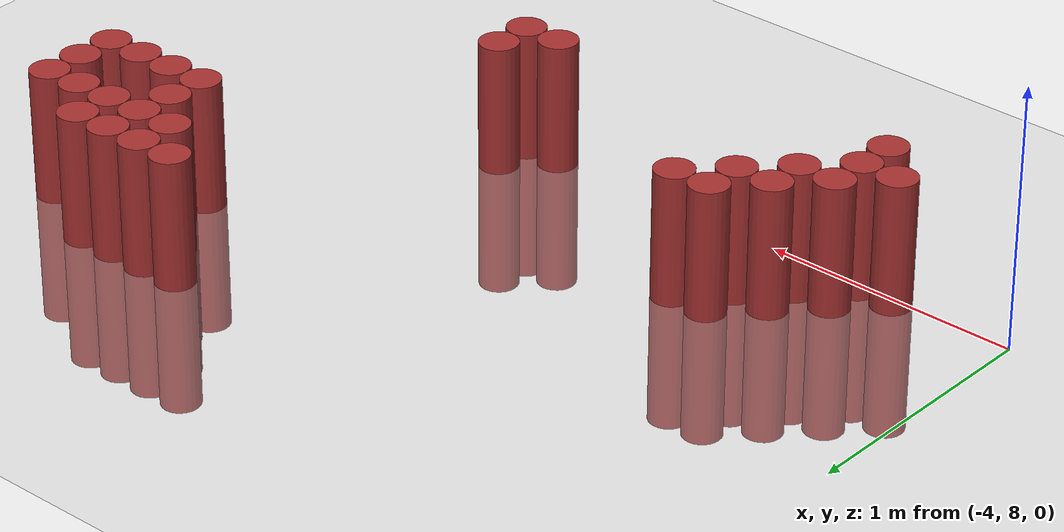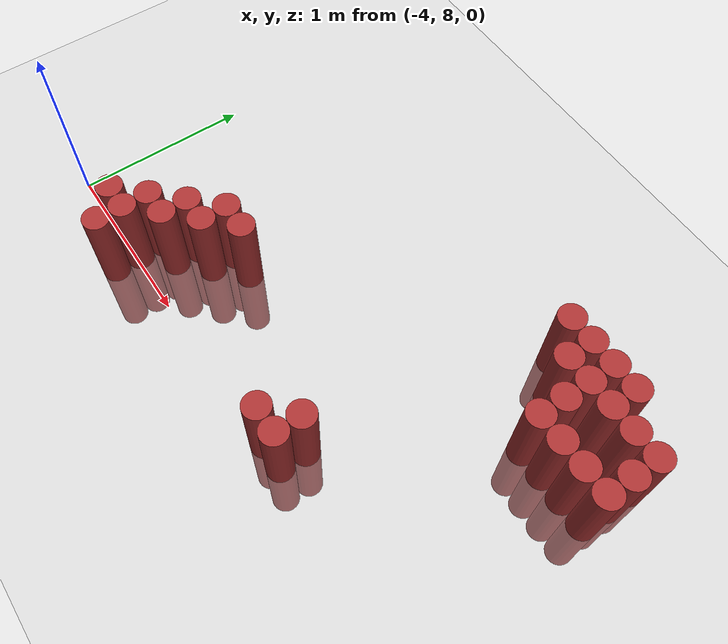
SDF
<sdf version="1.6">
 <world name="default">
  <model name="ground_plane">
   <static>1</static>
   <link name="link">
    <collision name="collision">
     <geometry><plane><normal>0 0 1</normal><size>100 100</size></plane></geometry>
     <surface><friction><ode><mu>100</mu><mu2>50</mu2></ode></friction></surface>
    </collision>
    <visual name="visual">
     <cast_shadows>0</cast_shadows>
     <geometry><plane><normal>0 0 1</normal><size>100 100</size></plane></geometry>
     <material>
      <script><uri>file://media/materials/scripts/gazebo.material</uri><name>Gazebo/Grey</name></script>
     </material>
    </visual>
   </link>
  </model>
  <model name="unit_cylinder_154">
   <static>1</static>
   <pose>-3.525000 8.025000 0.000000 0.000000 0.000000 0.000000</pose>
   <link name="link">
    <inertial>
     <mass>1</mass>
     <inertia><ixx>0.145833</ixx><ixy>0</ixy><ixz>0</ixz><iyy>0.145833</iyy><iyz>0</iyz><izz>0.125</izz></inertia>
    </inertial>
    <collision name="collision">
     <geometry><cylinder><radius>0.075000</radius><length>1</length></cylinder></geometry>
    </collision>
    <visual name="visual">
     <geometry><cylinder><radius>0.075000</radius><length>1</length></cylinder></geometry>
     <material>
      <ambient>0.648000 0.192000 0.192000 1</ambient>
      <diffuse>0.648000 0.192000 0.192000 1</diffuse>
     </material>
     <material>
      <script><name>Gazebo/Grey</name><uri>file://media/materials/scripts/gazebo.material</uri></script>
     </material>
    </visual>
   </link>
  </model>
  <model name="unit_cylinder_156">
   <static>1</static>
   <pose>-3.375000 7.875000 0.000000 0.000000 0.000000 0.000000</pose>
   <link name="link">
    <inertial>
     <mass>1</mass>
     <inertia><ixx>0.145833</ixx><ixy>0</ixy><ixz>0</ixz><iyy>0.145833</iyy><iyz>0</iyz><izz>0.125</izz></inertia>
    </inertial>
    <collision name="collision">
     <geometry><cylinder><radius>0.075000</radius><length>1</length></cylinder></geometry>
    </collision>
    <visual name="visual">
     <geometry><cylinder><radius>0.075000</radius><length>1</length></cylinder></geometry>
     <material>
      <ambient>0.648000 0.192000 0.192000 1</ambient>
      <diffuse>0.648000 0.192000 0.192000 1</diffuse>
     </material>
     <material>
      <script><name>Gazebo/Grey</name><uri>file://media/materials/scripts/gazebo.material</uri></script>
     </material>
    </visual>
   </link>
  </model>
  <model name="unit_cylinder_157">
   <static>1</static>
   <pose>-3.375000 8.025000 0.000000 0.000000 0.000000 0.000000</pose>
   <link name="link">
    <inertial>
     <mass>1</mass>
     <inertia><ixx>0.145833</ixx><ixy>0</ixy><ixz>0</ixz><iyy>0.145833</iyy><iyz>0</iyz><izz>0.125</izz></inertia>
    </inertial>
    <collision name="collision">
     <geometry><cylinder><radius>0.075000</radius><length>1</length></cylinder></geometry>
    </collision>
    <visual name="visual">
     <geometry><cylinder><radius>0.075000</radius><length>1</length></cylinder></geometry>
     <material>
      <ambient>0.648000 0.192000 0.192000 1</ambient>
      <diffuse>0.648000 0.192000 0.192000 1</diffuse>
     </material>
     <material>
      <script><name>Gazebo/Grey</name><uri>file://media/materials/scripts/gazebo.material</uri></script>
     </material>
    </visual>
   </link>
  </model>
  <model name="unit_cylinder_158">
   <static>1</static>
   <pose>-3.375000 8.175000 0.000000 0.000000 0.000000 0.000000</pose>
   <link name="link">
    <inertial>
     <mass>1</mass>
     <inertia><ixx>0.145833</ixx><ixy>0</ixy><ixz>0</ixz><iyy>0.145833</iyy><iyz>0</iyz><izz>0.125</izz></inertia>
    </inertial>
    <collision name="collision">
     <geometry><cylinder><radius>0.075000</radius><length>1</length></cylinder></geometry>
    </collision>
    <visual name="visual">
     <geometry><cylinder><radius>0.075000</radius><length>1</length></cylinder></geometry>
     <material>
      <ambient>0.648000 0.192000 0.192000 1</ambient>
      <diffuse>0.648000 0.192000 0.192000 1</diffuse>
     </material>
     <material>
      <script><name>Gazebo/Grey</name><uri>file://media/materials/scripts/gazebo.material</uri></script>
     </material>
    </visual>
   </link>
  </model>
  <model name="unit_cylinder_162">
   <static>1</static>
   <pose>-3.225000 8.175000 0.000000 0.000000 0.000000 0.000000</pose>
   <link name="link">
    <inertial>
     <mass>1</mass>
     <inertia><ixx>0.145833</ixx><ixy>0</ixy><ixz>0</ixz><iyy>0.145833</iyy><iyz>0</iyz><izz>0.125</izz></inertia>
    </inertial>
    <collision name="collision">
     <geometry><cylinder><radius>0.075000</radius><length>1</length></cylinder></geometry>
    </collision>
    <visual name="visual">
     <geometry><cylinder><radius>0.075000</radius><length>1</length></cylinder></geometry>
     <material>
      <ambient>0.648000 0.192000 0.192000 1</ambient>
      <diffuse>0.648000 0.192000 0.192000 1</diffuse>
     </material>
     <material>
      <script><name>Gazebo/Grey</name><uri>file://media/materials/scripts/gazebo.material</uri></script>
     </material>
    </visual>
   </link>
  </model>
  <model name="unit_cylinder_163">
   <static>1</static>
   <pose>-3.225000 8.325000 0.000000 0.000000 0.000000 0.000000</pose>
   <link name="link">
    <inertial>
     <mass>1</mass>
     <inertia><ixx>0.145833</ixx><ixy>0</ixy><ixz>0</ixz><iyy>0.145833</iyy><iyz>0</iyz><izz>0.125</izz></inertia>
    </inertial>
    <collision name="collision">
     <geometry><cylinder><radius>0.075000</radius><length>1</length></cylinder></geometry>
    </collision>
    <visual name="visual">
     <geometry><cylinder><radius>0.075000</radius><length>1</length></cylinder></geometry>
     <material>
      <ambient>0.648000 0.192000 0.192000 1</ambient>
      <diffuse>0.648000 0.192000 0.192000 1</diffuse>
     </material>
     <material>
      <script><name>Gazebo/Grey</name><uri>file://media/materials/scripts/gazebo.material</uri></script>
     </material>
    </visual>
   </link>
  </model>
  <model name="unit_cylinder_164">
   <static>1</static>
   <pose>-3.075000 8.325000 0.000000 0.000000 0.000000 0.000000</pose>
   <link name="link">
    <inertial>
     <mass>1</mass>
     <inertia><ixx>0.145833</ixx><ixy>0</ixy><ixz>0</ixz><iyy>0.145833</iyy><iyz>0</iyz><izz>0.125</izz></inertia>
    </inertial>
    <collision name="collision">
     <geometry><cylinder><radius>0.075000</radius><length>1</length></cylinder></geometry>
    </collision>
    <visual name="visual">
     <geometry><cylinder><radius>0.075000</radius><length>1</length></cylinder></geometry>
     <material>
      <ambient>0.648000 0.192000 0.192000 1</ambient>
      <diffuse>0.648000 0.192000 0.192000 1</diffuse>
     </material>
     <material>
      <script><name>Gazebo/Grey</name><uri>file://media/materials/scripts/gazebo.material</uri></script>
     </material>
    </visual>
   </link>
  </model>
  <model name="unit_cylinder_165">
   <static>1</static>
   <pose>-3.075000 8.475000 0.000000 0.000000 0.000000 0.000000</pose>
   <link name="link">
    <inertial>
     <mass>1</mass>
     <inertia><ixx>0.145833</ixx><ixy>0</ixy><ixz>0</ixz><iyy>0.145833</iyy><iyz>0</iyz><izz>0.125</izz></inertia>
    </inertial>
    <collision name="collision">
     <geometry><cylinder><radius>0.075000</radius><length>1</length></cylinder></geometry>
    </collision>
    <visual name="visual">
     <geometry><cylinder><radius>0.075000</radius><length>1</length></cylinder></geometry>
     <material>
      <ambient>0.648000 0.192000 0.192000 1</ambient>
      <diffuse>0.648000 0.192000 0.192000 1</diffuse>
     </material>
     <material>
      <script><name>Gazebo/Grey</name><uri>file://media/materials/scripts/gazebo.material</uri></script>
     </material>
    </visual>
   </link>
  </model>
  <model name="unit_cylinder_166">
   <static>1</static>
   <pose>-2.925000 8.475000 0.000000 0.000000 0.000000 0.000000</pose>
   <link name="link">
    <inertial>
     <mass>1</mass>
     <inertia><ixx>0.145833</ixx><ixy>0</ixy><ixz>0</ixz><iyy>0.145833</iyy><iyz>0</iyz><izz>0.125</izz></inertia>
    </inertial>
    <collision name="collision">
     <geometry><cylinder><radius>0.075000</radius><length>1</length></cylinder></geometry>
    </collision>
    <visual name="visual">
     <geometry><cylinder><radius>0.075000</radius><length>1</length></cylinder></geometry>
     <material>
      <ambient>0.648000 0.192000 0.192000 1</ambient>
      <diffuse>0.648000 0.192000 0.192000 1</diffuse>
     </material>
     <material>
      <script><name>Gazebo/Grey</name><uri>file://media/materials/scripts/gazebo.material</uri></script>
     </material>
    </visual>
   </link>
  </model>
  <model name="unit_cylinder_179">
   <static>1</static>
   <pose>-2.025000 8.025000 0.000000 0.000000 0.000000 0.000000</pose>
   <link name="link">
    <inertial>
     <mass>1</mass>
     <inertia><ixx>0.145833</ixx><ixy>0</ixy><ixz>0</ixz><iyy>0.145833</iyy><iyz>0</iyz><izz>0.125</izz></inertia>
    </inertial>
    <collision name="collision">
     <geometry><cylinder><radius>0.075000</radius><length>1</length></cylinder></geometry>
    </collision>
    <visual name="visual">
     <geometry><cylinder><radius>0.075000</radius><length>1</length></cylinder></geometry>
     <material>
      <ambient>0.648000 0.192000 0.192000 1</ambient>
      <diffuse>0.648000 0.192000 0.192000 1</diffuse>
     </material>
     <material>
      <script><name>Gazebo/Grey</name><uri>file://media/materials/scripts/gazebo.material</uri></script>
     </material>
    </visual>
   </link>
  </model>
  <model name="unit_cylinder_188">
   <static>1</static>
   <pose>-1.875000 8.025000 0.000000 0.000000 0.000000 0.000000</pose>
   <link name="link">
    <inertial>
     <mass>1</mass>
     <inertia><ixx>0.145833</ixx><ixy>0</ixy><ixz>0</ixz><iyy>0.145833</iyy><iyz>0</iyz><izz>0.125</izz></inertia>
    </inertial>
    <collision name="collision">
     <geometry><cylinder><radius>0.075000</radius><length>1</length></cylinder></geometry>
    </collision>
    <visual name="visual">
     <geometry><cylinder><radius>0.075000</radius><length>1</length></cylinder></geometry>
     <material>
      <ambient>0.648000 0.192000 0.192000 1</ambient>
      <diffuse>0.648000 0.192000 0.192000 1</diffuse>
     </material>
     <material>
      <script><name>Gazebo/Grey</name><uri>file://media/materials/scripts/gazebo.material</uri></script>
     </material>
    </visual>
   </link>
  </model>
  <model name="unit_cylinder_189">
   <static>1</static>
   <pose>-1.875000 8.175000 0.000000 0.000000 0.000000 0.000000</pose>
   <link name="link">
    <inertial>
     <mass>1</mass>
     <inertia><ixx>0.145833</ixx><ixy>0</ixy><ixz>0</ixz><iyy>0.145833</iyy><iyz>0</iyz><izz>0.125</izz></inertia>
    </inertial>
    <collision name="collision">
     <geometry><cylinder><radius>0.075000</radius><length>1</length></cylinder></geometry>
    </collision>
    <visual name="visual">
     <geometry><cylinder><radius>0.075000</radius><length>1</length></cylinder></geometry>
     <material>
      <ambient>0.648000 0.192000 0.192000 1</ambient>
      <diffuse>0.648000 0.192000 0.192000 1</diffuse>
     </material>
     <material>
      <script><name>Gazebo/Grey</name><uri>file://media/materials/scripts/gazebo.material</uri></script>
     </material>
    </visual>
   </link>
  </model>
  <model name="unit_cylinder_200">
   <static>1</static>
   <pose>-1.575000 9.525000 0.000000 0.000000 0.000000 0.000000</pose>
   <link name="link">
    <inertial>
     <mass>1</mass>
     <inertia><ixx>0.145833</ixx><ixy>0</ixy><ixz>0</ixz><iyy>0.145833</iyy><iyz>0</iyz><izz>0.125</izz></inertia>
    </inertial>
    <collision name="collision">
     <geometry><cylinder><radius>0.075000</radius><length>1</length></cylinder></geometry>
    </collision>
    <visual name="visual">
     <geometry><cylinder><radius>0.075000</radius><length>1</length></cylinder></geometry>
     <material>
      <ambient>0.648000 0.192000 0.192000 1</ambient>
      <diffuse>0.648000 0.192000 0.192000 1</diffuse>
     </material>
     <material>
      <script><name>Gazebo/Grey</name><uri>file://media/materials/scripts/gazebo.material</uri></script>
     </material>
    </visual>
   </link>
  </model>
  <model name="unit_cylinder_201">
   <static>1</static>
   <pose>-1.425000 9.375000 0.000000 0.000000 0.000000 0.000000</pose>
   <link name="link">
    <inertial>
     <mass>1</mass>
     <inertia><ixx>0.145833</ixx><ixy>0</ixy><ixz>0</ixz><iyy>0.145833</iyy><iyz>0</iyz><izz>0.125</izz></inertia>
    </inertial>
    <collision name="collision">
     <geometry><cylinder><radius>0.075000</radius><length>1</length></cylinder></geometry>
    </collision>
    <visual name="visual">
     <geometry><cylinder><radius>0.075000</radius><length>1</length></cylinder></geometry>
     <material>
      <ambient>0.648000 0.192000 0.192000 1</ambient>
      <diffuse>0.648000 0.192000 0.192000 1</diffuse>
     </material>
     <material>
      <script><name>Gazebo/Grey</name><uri>file://media/materials/scripts/gazebo.material</uri></script>
     </material>
    </visual>
   </link>
  </model>
  <model name="unit_cylinder_202">
   <static>1</static>
   <pose>-1.425000 9.525000 0.000000 0.000000 0.000000 0.000000</pose>
   <link name="link">
    <inertial>
     <mass>1</mass>
     <inertia><ixx>0.145833</ixx><ixy>0</ixy><ixz>0</ixz><iyy>0.145833</iyy><iyz>0</iyz><izz>0.125</izz></inertia>
    </inertial>
    <collision name="collision">
     <geometry><cylinder><radius>0.075000</radius><length>1</length></cylinder></geometry>
    </collision>
    <visual name="visual">
     <geometry><cylinder><radius>0.075000</radius><length>1</length></cylinder></geometry>
     <material>
      <ambient>0.648000 0.192000 0.192000 1</ambient>
      <diffuse>0.648000 0.192000 0.192000 1</diffuse>
     </material>
     <material>
      <script><name>Gazebo/Grey</name><uri>file://media/materials/scripts/gazebo.material</uri></script>
     </material>
    </visual>
   </link>
  </model>
  <model name="unit_cylinder_203">
   <static>1</static>
   <pose>-1.275000 9.075000 0.000000 0.000000 0.000000 0.000000</pose>
   <link name="link">
    <inertial>
     <mass>1</mass>
     <inertia><ixx>0.145833</ixx><ixy>0</ixy><ixz>0</ixz><iyy>0.145833</iyy><iyz>0</iyz><izz>0.125</izz></inertia>
    </inertial>
    <collision name="collision">
     <geometry><cylinder><radius>0.075000</radius><length>1</length></cylinder></geometry>
    </collision>
    <visual name="visual">
     <geometry><cylinder><radius>0.075000</radius><length>1</length></cylinder></geometry>
     <material>
      <ambient>0.648000 0.192000 0.192000 1</ambient>
      <diffuse>0.648000 0.192000 0.192000 1</diffuse>
     </material>
     <material>
      <script><name>Gazebo/Grey</name><uri>file://media/materials/scripts/gazebo.material</uri></script>
     </material>
    </visual>
   </link>
  </model>
  <model name="unit_cylinder_204">
   <static>1</static>
   <pose>-1.275000 9.225000 0.000000 0.000000 0.000000 0.000000</pose>
   <link name="link">
    <inertial>
     <mass>1</mass>
     <inertia><ixx>0.145833</ixx><ixy>0</ixy><ixz>0</ixz><iyy>0.145833</iyy><iyz>0</iyz><izz>0.125</izz></inertia>
    </inertial>
    <collision name="collision">
     <geometry><cylinder><radius>0.075000</radius><length>1</length></cylinder></geometry>
    </collision>
    <visual name="visual">
     <geometry><cylinder><radius>0.075000</radius><length>1</length></cylinder></geometry>
     <material>
      <ambient>0.648000 0.192000 0.192000 1</ambient>
      <diffuse>0.648000 0.192000 0.192000 1</diffuse>
     </material>
     <material>
      <script><name>Gazebo/Grey</name><uri>file://media/materials/scripts/gazebo.material</uri></script>
     </material>
    </visual>
   </link>
  </model>
  <model name="unit_cylinder_205">
   <static>1</static>
   <pose>-1.275000 9.375000 0.000000 0.000000 0.000000 0.000000</pose>
   <link name="link">
    <inertial>
     <mass>1</mass>
     <inertia><ixx>0.145833</ixx><ixy>0</ixy><ixz>0</ixz><iyy>0.145833</iyy><iyz>0</iyz><izz>0.125</izz></inertia>
    </inertial>
    <collision name="collision">
     <geometry><cylinder><radius>0.075000</radius><length>1</length></cylinder></geometry>
    </collision>
    <visual name="visual">
     <geometry><cylinder><radius>0.075000</radius><length>1</length></cylinder></geometry>
     <material>
      <ambient>0.648000 0.192000 0.192000 1</ambient>
      <diffuse>0.648000 0.192000 0.192000 1</diffuse>
     </material>
     <material>
      <script><name>Gazebo/Grey</name><uri>file://media/materials/scripts/gazebo.material</uri></script>
     </material>
    </visual>
   </link>
  </model>
  <model name="unit_cylinder_206">
   <static>1</static>
   <pose>-1.275000 9.525000 0.000000 0.000000 0.000000 0.000000</pose>
   <link name="link">
    <inertial>
     <mass>1</mass>
     <inertia><ixx>0.145833</ixx><ixy>0</ixy><ixz>0</ixz><iyy>0.145833</iyy><iyz>0</iyz><izz>0.125</izz></inertia>
    </inertial>
    <collision name="collision">
     <geometry><cylinder><radius>0.075000</radius><length>1</length></cylinder></geometry>
    </collision>
    <visual name="visual">
     <geometry><cylinder><radius>0.075000</radius><length>1</length></cylinder></geometry>
     <material>
      <ambient>0.648000 0.192000 0.192000 1</ambient>
      <diffuse>0.648000 0.192000 0.192000 1</diffuse>
     </material>
     <material>
      <script><name>Gazebo/Grey</name><uri>file://media/materials/scripts/gazebo.material</uri></script>
     </material>
    </visual>
   </link>
  </model>
  <model name="unit_cylinder_208">
   <static>1</static>
   <pose>-1.125000 9.075000 0.000000 0.000000 0.000000 0.000000</pose>
   <link name="link">
    <inertial>
     <mass>1</mass>
     <inertia><ixx>0.145833</ixx><ixy>0</ixy><ixz>0</ixz><iyy>0.145833</iyy><iyz>0</iyz><izz>0.125</izz></inertia>
    </inertial>
    <collision name="collision">
     <geometry><cylinder><radius>0.075000</radius><length>1</length></cylinder></geometry>
    </collision>
    <visual name="visual">
     <geometry><cylinder><radius>0.075000</radius><length>1</length></cylinder></geometry>
     <material>
      <ambient>0.648000 0.192000 0.192000 1</ambient>
      <diffuse>0.648000 0.192000 0.192000 1</diffuse>
     </material>
     <material>
      <script><name>Gazebo/Grey</name><uri>file://media/materials/scripts/gazebo.material</uri></script>
     </material>
    </visual>
   </link>
  </model>
  <model name="unit_cylinder_209">
   <static>1</static>
   <pose>-1.125000 9.375000 0.000000 0.000000 0.000000 0.000000</pose>
   <link name="link">
    <inertial>
     <mass>1</mass>
     <inertia><ixx>0.145833</ixx><ixy>0</ixy><ixz>0</ixz><iyy>0.145833</iyy><iyz>0</iyz><izz>0.125</izz></inertia>
    </inertial>
    <collision name="collision">
     <geometry><cylinder><radius>0.075000</radius><length>1</length></cylinder></geometry>
    </collision>
    <visual name="visual">
     <geometry><cylinder><radius>0.075000</radius><length>1</length></cylinder></geometry>
     <material>
      <ambient>0.648000 0.192000 0.192000 1</ambient>
      <diffuse>0.648000 0.192000 0.192000 1</diffuse>
     </material>
     <material>
      <script><name>Gazebo/Grey</name><uri>file://media/materials/scripts/gazebo.material</uri></script>
     </material>
    </visual>
   </link>
  </model>
  <model name="unit_cylinder_210">
   <static>1</static>
   <pose>-1.125000 9.525000 0.000000 0.000000 0.000000 0.000000</pose>
   <link name="link">
    <inertial>
     <mass>1</mass>
     <inertia><ixx>0.145833</ixx><ixy>0</ixy><ixz>0</ixz><iyy>0.145833</iyy><iyz>0</iyz><izz>0.125</izz></inertia>
    </inertial>
    <collision name="collision">
     <geometry><cylinder><radius>0.075000</radius><length>1</length></cylinder></geometry>
    </collision>
    <visual name="visual">
     <geometry><cylinder><radius>0.075000</radius><length>1</length></cylinder></geometry>
     <material>
      <ambient>0.648000 0.192000 0.192000 1</ambient>
      <diffuse>0.648000 0.192000 0.192000 1</diffuse>
     </material>
     <material>
      <script><name>Gazebo/Grey</name><uri>file://media/materials/scripts/gazebo.material</uri></script>
     </material>
    </visual>
   </link>
  </model>
  <model name="unit_cylinder_213">
   <static>1</static>
   <pose>-0.975000 9.075000 0.000000 0.000000 0.000000 0.000000</pose>
   <link name="link">
    <inertial>
     <mass>1</mass>
     <inertia><ixx>0.145833</ixx><ixy>0</ixy><ixz>0</ixz><iyy>0.145833</iyy><iyz>0</iyz><izz>0.125</izz></inertia>
    </inertial>
    <collision name="collision">
     <geometry><cylinder><radius>0.075000</radius><length>1</length></cylinder></geometry>
    </collision>
    <visual name="visual">
     <geometry><cylinder><radius>0.075000</radius><length>1</length></cylinder></geometry>
     <material>
      <ambient>0.648000 0.192000 0.192000 1</ambient>
      <diffuse>0.648000 0.192000 0.192000 1</diffuse>
     </material>
     <material>
      <script><name>Gazebo/Grey</name><uri>file://media/materials/scripts/gazebo.material</uri></script>
     </material>
    </visual>
   </link>
  </model>
  <model name="unit_cylinder_214">
   <static>1</static>
   <pose>-0.975000 9.375000 0.000000 0.000000 0.000000 0.000000</pose>
   <link name="link">
    <inertial>
     <mass>1</mass>
     <inertia><ixx>0.145833</ixx><ixy>0</ixy><ixz>0</ixz><iyy>0.145833</iyy><iyz>0</iyz><izz>0.125</izz></inertia>
    </inertial>
    <collision name="collision">
     <geometry><cylinder><radius>0.075000</radius><length>1</length></cylinder></geometry>
    </collision>
    <visual name="visual">
     <geometry><cylinder><radius>0.075000</radius><length>1</length></cylinder></geometry>
     <material>
      <ambient>0.648000 0.192000 0.192000 1</ambient>
      <diffuse>0.648000 0.192000 0.192000 1</diffuse>
     </material>
     <material>
      <script><name>Gazebo/Grey</name><uri>file://media/materials/scripts/gazebo.material</uri></script>
     </material>
    </visual>
   </link>
  </model>
  <model name="unit_cylinder_215">
   <static>1</static>
   <pose>-0.825000 9.075000 0.000000 0.000000 0.000000 0.000000</pose>
   <link name="link">
    <inertial>
     <mass>1</mass>
     <inertia><ixx>0.145833</ixx><ixy>0</ixy><ixz>0</ixz><iyy>0.145833</iyy><iyz>0</iyz><izz>0.125</izz></inertia>
    </inertial>
    <collision name="collision">
     <geometry><cylinder><radius>0.075000</radius><length>1</length></cylinder></geometry>
    </collision>
    <visual name="visual">
     <geometry><cylinder><radius>0.075000</radius><length>1</length></cylinder></geometry>
     <material>
      <ambient>0.648000 0.192000 0.192000 1</ambient>
      <diffuse>0.648000 0.192000 0.192000 1</diffuse>
     </material>
     <material>
      <script><name>Gazebo/Grey</name><uri>file://media/materials/scripts/gazebo.material</uri></script>
     </material>
    </visual>
   </link>
  </model>
  <model name="unit_cylinder_216">
   <static>1</static>
   <pose>-0.825000 9.225000 0.000000 0.000000 0.000000 0.000000</pose>
   <link name="link">
    <inertial>
     <mass>1</mass>
     <inertia><ixx>0.145833</ixx><ixy>0</ixy><ixz>0</ixz><iyy>0.145833</iyy><iyz>0</iyz><izz>0.125</izz></inertia>
    </inertial>
    <collision name="collision">
     <geometry><cylinder><radius>0.075000</radius><length>1</length></cylinder></geometry>
    </collision>
    <visual name="visual">
     <geometry><cylinder><radius>0.075000</radius><length>1</length></cylinder></geometry>
     <material>
      <ambient>0.648000 0.192000 0.192000 1</ambient>
      <diffuse>0.648000 0.192000 0.192000 1</diffuse>
     </material>
     <material>
      <script><name>Gazebo/Grey</name><uri>file://media/materials/scripts/gazebo.material</uri></script>
     </material>
    </visual>
   </link>
  </model>
  <model name="unit_cylinder_217">
   <static>1</static>
   <pose>-0.825000 9.375000 0.000000 0.000000 0.000000 0.000000</pose>
   <link name="link">
    <inertial>
     <mass>1</mass>
     <inertia><ixx>0.145833</ixx><ixy>0</ixy><ixz>0</ixz><iyy>0.145833</iyy><iyz>0</iyz><izz>0.125</izz></inertia>
    </inertial>
    <collision name="collision">
     <geometry><cylinder><radius>0.075000</radius><length>1</length></cylinder></geometry>
    </collision>
    <visual name="visual">
     <geometry><cylinder><radius>0.075000</radius><length>1</length></cylinder></geometry>
     <material>
      <ambient>0.648000 0.192000 0.192000 1</ambient>
      <diffuse>0.648000 0.192000 0.192000 1</diffuse>
     </material>
     <material>
      <script><name>Gazebo/Grey</name><uri>file://media/materials/scripts/gazebo.material</uri></script>
     </material>
    </visual>
   </link>
  </model>
 </world>
</sdf>
